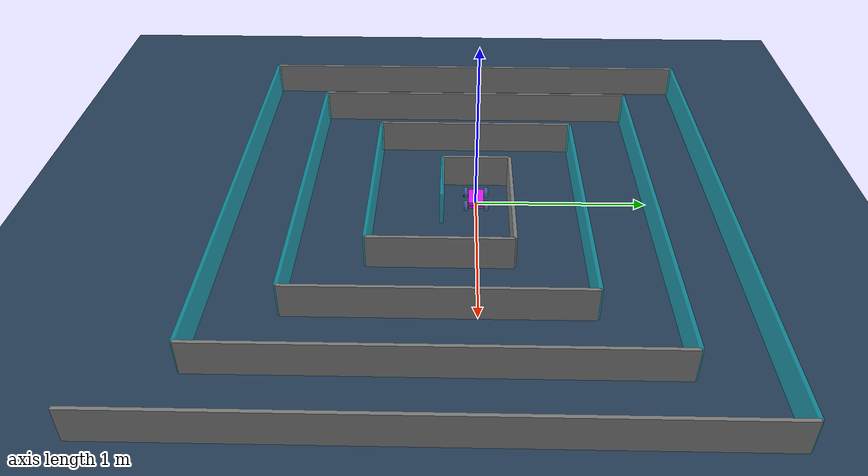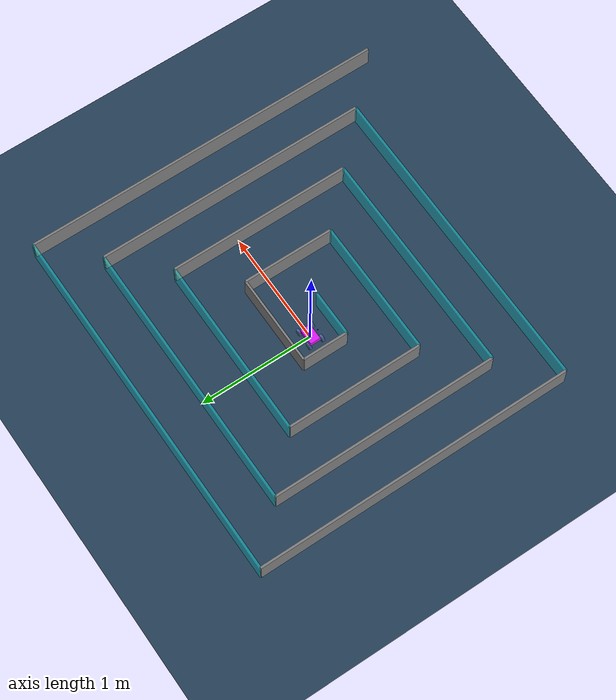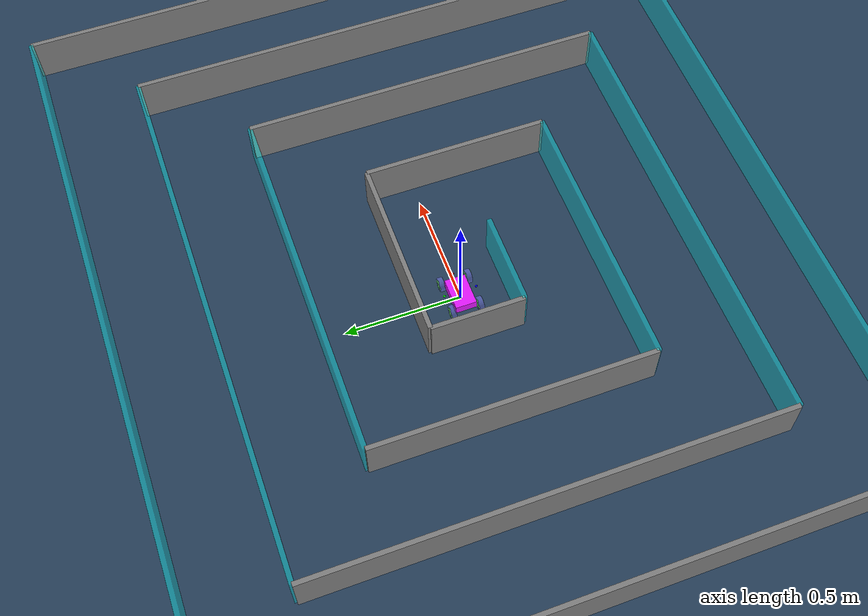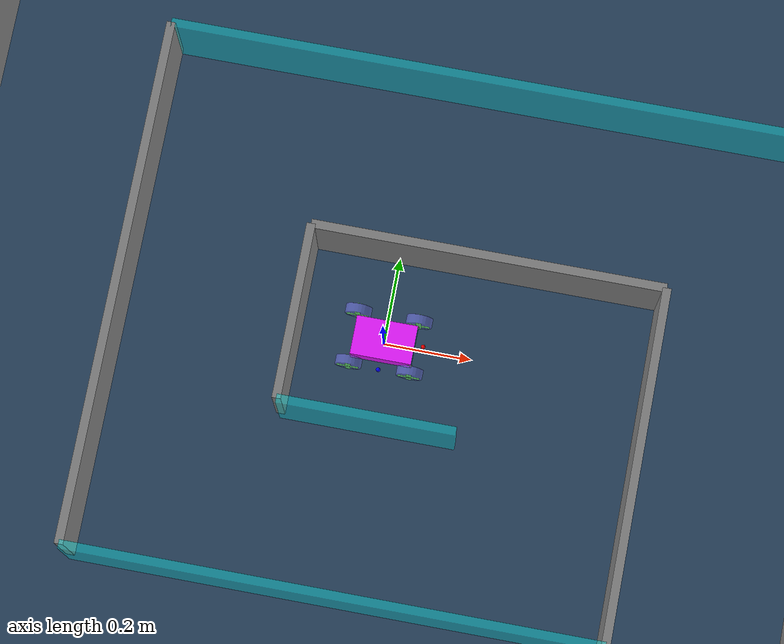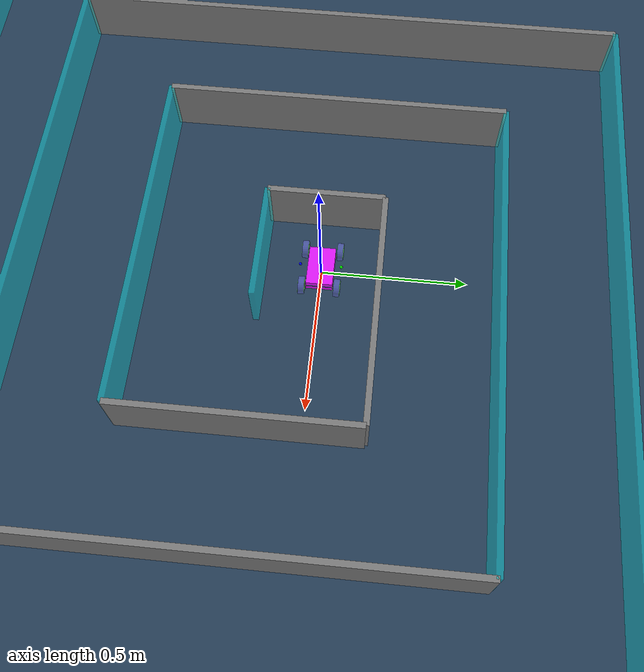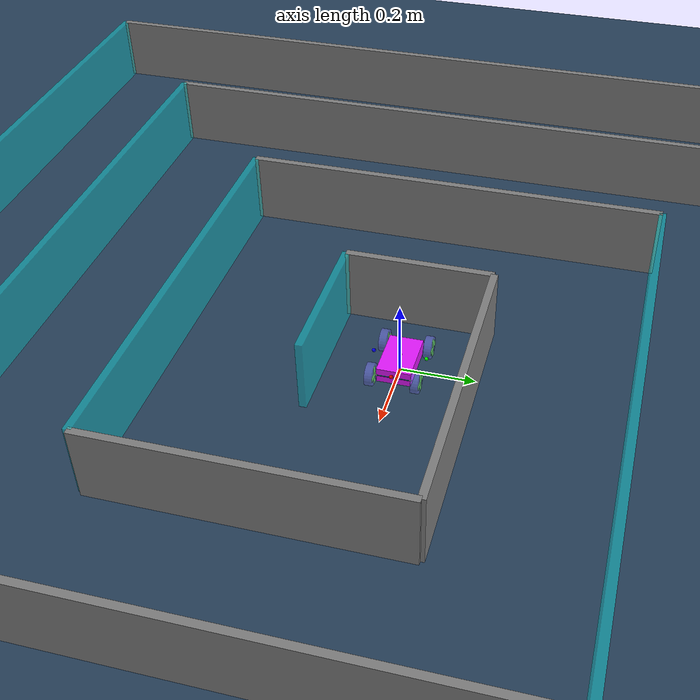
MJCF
<mujoco model="model scene">
  <include file="model.xml"/>

  <!-- Add some fluid viscosity to prevent the hanging box from jiggling forever -->
  <option viscosity="0.5"/>

  <statistic center="0 0 0.05" extent="0.3"/>

  <asset>
    <texture type="skybox" builtin="gradient" rgb1="0.3 0.5 0.7" rgb2="0 0 0" width="512" height="3072"/>
    <texture type="2d" name="groundplane" builtin="checker" mark="edge" rgb1="0.2 0.3 0.4" rgb2="0.1 0.2 0.3"
      markrgb="0.8 0.8 0.8" width="300" height="300"/>
    <material name="groundplane" texture="groundplane" texuniform="true" texrepeat="5 5" reflectance="0.2"/>
  </asset>

  <worldbody>
    <light pos="0 0 1"/>
    <light pos="0 -0.2 1" dir="0 0.2 -0.8" directional="true"/>

    <body pos="0 0 0"   >

      <geom type="box" size="0.2 0.01 0.1 " pos="0 -0.2 0.1" rgba="0 1 2 0.4"/>
      <geom type="box" size="0.4 0.01 0.1 " pos="0.2 0.2 0.1" />
      <geom type="box" size="0.01 0.4 0.1 " pos="0.6 -0.2 0.1" />
      <geom type="box" size="0.6 0.01 0.1 " pos="0 -0.6 0.1" rgba="0 1 2 0.4"/>
      <geom type="box" size="0.01 0.6 0.1 " pos="-0.6 0 0.1" />
      <geom type="box" size="0.8 0.01 0.1 " pos="0.2 0.6 0.1" rgba="0 1 2 0.4"/>
      <geom type="box" size="0.01 0.8 0.1 " pos="1 -0.2 0.1" />
      <geom type="box" size="1 0.01 0.1 " pos="0 -1 0.1" rgba="0 1 2 0.4"/>
      <geom type="box" size="0.01 1 0.1 " pos="-1 0 0.1" />
      <geom type="box" size="1.2 0.01 0.1 " pos="0.2 1 0.1" rgba="0 1 2 0.4"/>
      <geom type="box" size="0.01 1.2 0.1 " pos="1.4 -0.2 0.1" />
      <geom type="box" size="1.4 0.01 0.1 " pos="0 -1.4 0.1" rgba="0 1 2 0.4"/>
      <geom type="box" size="0.01 1.4 0.1 " pos="-1.4 0 0.1" />
      <geom type="box" size="1.6 0.01 0.1 " pos="0.2 1.4 0.1" rgba="0 1 2 0.4"/>
      <geom type="box" size="0.01 1.6 0.1 " pos="1.8 -0.2 0.1" />

      <geom type="box" size="0.01 0.2 0.1 " pos="-0.2 0 0.1" />

    </body>

  </worldbody>

</mujoco>

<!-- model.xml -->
<mujoco>
  <compiler autolimits="true"/>

  <asset>
    <texture name="grid" type="2d" builtin="checker" width="512" height="512" rgb1=".1 .2 .3" rgb2=".2 .3 .4"/>
    <material name="grid" texture="grid" texrepeat="1 1" texuniform="true" reflectance=".2"/>

  </asset>

  <default>
    <joint damping=".03" actuatorfrcrange="-0.5 0.5"/>
    <default class="wheel">
      <geom type="cylinder" size=".03 .01" rgba=".5 .5 1 0.5"/>
    </default>
    <default class="decor">
      <site type="box" rgba=".5 1 .5 0.8"/>
    </default>
  </default>

  <worldbody>
    <geom type="plane" size="3 3 .01" material="grid"/>
    <body name="car" pos="0 0 .03">
      <freejoint/>
      <light name="top light" pos="0 0 2" mode="trackcom" diffuse=".4 .4 .4"/>
      <geom name="chasis" type="box" size="0.07 0.045 0.02" rgba="0.9 0.1 1 0.9"/>
      <body name="left wheel" pos="-.07 .06 0" zaxis="0 1 0">
        <joint name="left"/>
        <geom class="wheel"/>
        <site class="decor" size=".006 .025 .0115"/>
        <site class="decor" size=".025 .006 .0115"/>
      </body>
      <body name="right wheel" pos="-.07 -.06 0" zaxis="0 1 0">
        <joint name="right"/>
        <geom class="wheel"/>
        <site class="decor" size=".006 .025 .0115"/>
        <site class="decor" size=".025 .006 .0115"/>
      </body>
      <body name="front left wheel" pos=".07 .06 0" zaxis="0 1 0">
        <joint name="front left"/>
        <geom class="wheel"/>
        <site class="decor" size=".006 .025 .0115"/>
        <site class="decor" size=".025 .006 .0115"/>
      </body>
      <body name="front right wheel" pos=".07 -.06 0" zaxis="0 1 0">
        <joint name="front right"/>
        <geom class="wheel"/>
        <site class="decor" size=".006 .025 .0115"/>
        <site class="decor" size=".025 .006 .0115"/>
      </body>
      <body name="fixed" pos="0.07 0 0" zaxis="1 0 0">
        <geom name="g4" type="box" size="0.001 0.045 0.001" rgba="0 0.5 0.5 1"/>
        <site name="s0" size="0.003" pos="0 0.045 0"/>
        <site name="s1" size="0.003" pos="0 -0.045 0"/>

     </body>

      <body name="os_ackerm" pos="0.04 0 0">
        <joint name="acker" type="slide" axis="0 1 0" />
        <geom type="box" size="0.001 0.035 0.001" rgba="1 0.3 0.3 1" />
        <site name="s5" size="0.003" pos="0 -0.035 0" rgba="1 0.5 0.5 1"/>
        <site name="s6" size="0.003" pos="0 0.035 0" rgba="1 0.5 0.5 1"/>
      </body>

    <!-- Новый site для IMU -->
    <site name="imu" pos="0 0 0.02" size="0.005" rgba="1 1 0 1"/>
    <!-- Сенсоры расстояния / касания -->
    <site name="sensor_front" pos="0.09 0 0.02" size="0.005" rgba="1 0 0 1"/>
    <site name="sensor_left"  pos="0 0.07 0.02" size="0.005" rgba="0 1 0 1"/>
    <site name="sensor_right" pos="0 -0.07 0.02" size="0.005" rgba="0 0 1 1"/>

    </body>
  </worldbody>

  <tendon>
    <fixed name="forward">
      <joint joint="front left" coef=".5"/>
      <joint joint="front right" coef=".5"/>
    </fixed>
    <fixed name="turn">
      <joint joint="front left" coef="-1"/>
      <joint joint="front right" coef="1"/>
    </fixed>

    <fixed name="turn left wheel">
      <joint joint="front left" coef="-0.5"/>
    </fixed>

    <fixed name="turn right wheel">
      <joint joint="front right" coef="-0.5"/>
    </fixed>

    <spatial  width=".001" stiffness="0.1">
      <site site="s0"/>
      <site site="s6"/>
      <site site="s5"/>
      <site site="s1"/>
    </spatial>

  </tendon>

  <actuator>
    <motor name="forward" tendon="forward" ctrlrange="-100 100"/>
    <motor name="turn" tendon="turn" ctrlrange="-180 180"/>

    <motor name="turn left wheel" tendon="turn left wheel" ctrlrange="-1 1"/>
    <motor name="turn right wheel" tendon="turn right wheel" ctrlrange="-1 1"/>
  </actuator>

   <sensor>
    <!-- Датчики нагрузки на двигатели -->
    <jointactuatorfrc name="right" joint="right"/>
    <jointactuatorfrc name="left" joint="left"/>

    <!-- Гироскоп -->
    <gyro name="gyro" site="imu"/>

    <!-- Акселерометр -->
    <accelerometer name="accel" site="imu"/>

    <!-- Лазерные дальномеры -->
    <rangefinder name="range_front" site="sensor_front"/>
    <rangefinder name="range_left" site="sensor_left"/>
    <rangefinder name="range_right" site="sensor_right"/>

    <!-- Сенсоры контакта (тач-сенсоры) -->
    <touch name="touch_front" site="sensor_front"/>
    <touch name="touch_left" site="sensor_left"/>
    <touch name="touch_right" site="sensor_right"/>
  </sensor>

</mujoco>
